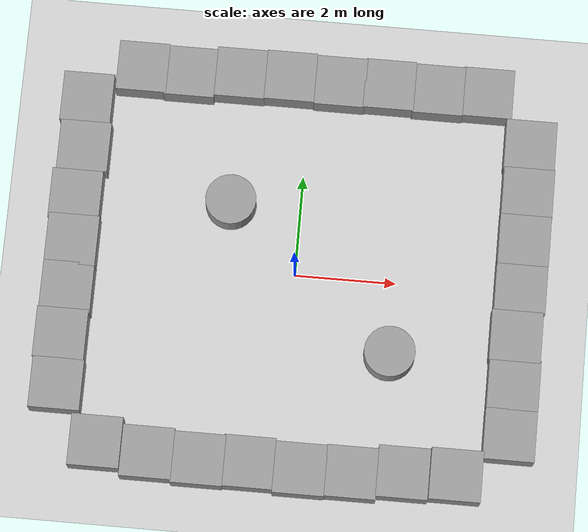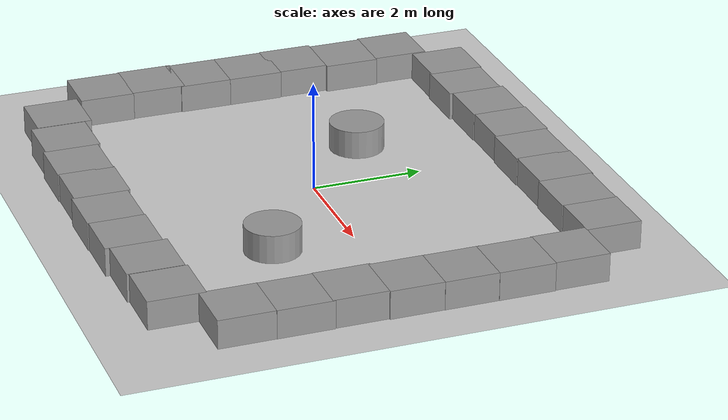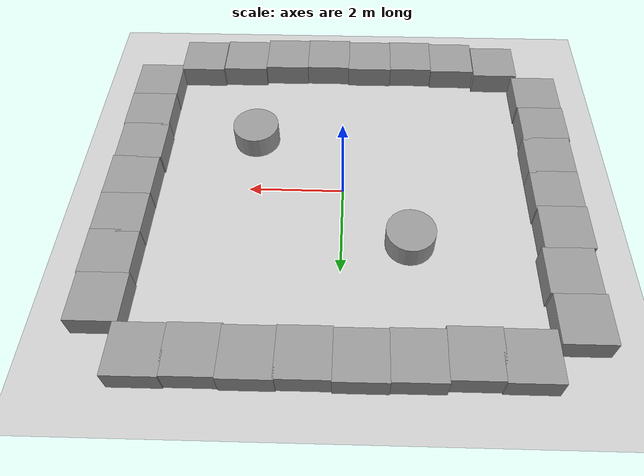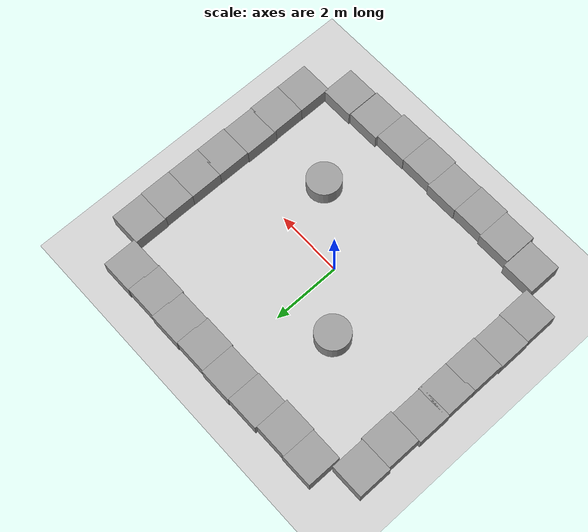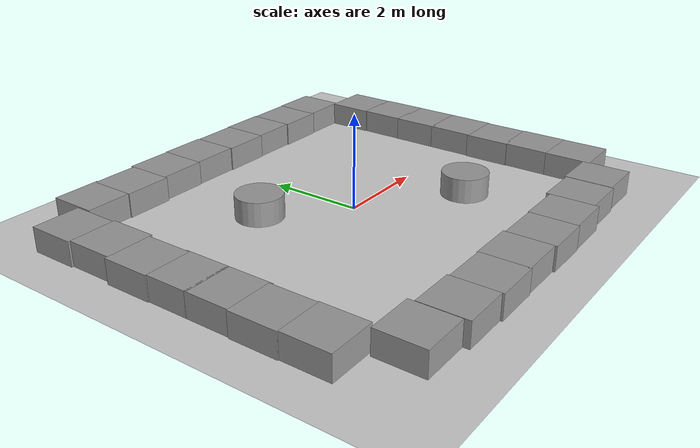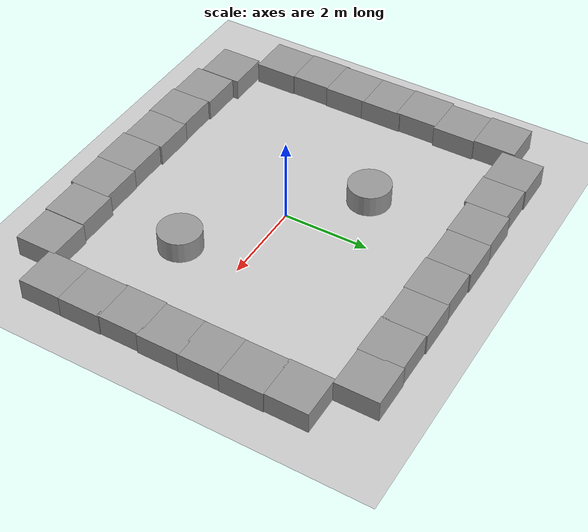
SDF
<sdf version="1.6">
 <world name="default">
  <light name="sun" type="directional">
   <pose>0 0 10 0 -0 0</pose>
   <diffuse>0.8 0.8 0.8 1</diffuse>
   <specular>0.2 0.2 0.2 1</specular>
   <attenuation>
    <range>1000</range>
    <constant>0.9</constant>
    <linear>0.01</linear>
    <quadratic>0.001</quadratic>
   </attenuation>
   <direction>-0.5 0.1 -0.9</direction>
  </light>
  <model name="ground_plane">
   <static>1</static>
   <link name="link">
    <collision name="collision">
     <geometry><plane><normal>0 0 1</normal><size>100 100</size></plane></geometry>
     <surface>
      <contact><collide_bitmask>65535</collide_bitmask></contact>
      <friction><ode><mu>100</mu><mu2>50</mu2></ode></friction>
     </surface>
    </collision>
    <visual name="visual">
     <cast_shadows>0</cast_shadows>
     <geometry><plane><normal>0 0 1</normal><size>100 100</size></plane></geometry>
     <material>
      <script><uri>file://media/materials/scripts/gazebo.material</uri><name>Gazebo/Grey</name></script>
     </material>
    </visual>
   </link>
  </model>
  <gravity>0 0 -9.8</gravity>
  <magnetic_field>6e-06 2.3e-05 -4.2e-05</magnetic_field>
  <atmosphere type="adiabatic"/>
  <physics name="default_physics" default="0" type="ode">
   <max_step_size>0.001</max_step_size>
   <real_time_factor>1</real_time_factor>
   <real_time_update_rate>1000</real_time_update_rate>
  </physics>
  <scene><ambient>0.4 0.4 0.4 1</ambient><background>0.7 0.7 0.7 1</background><shadows>1</shadows></scene>
  <audio><device>default</device></audio>
  <spherical_coordinates>
   <surface_model>EARTH_WGS84</surface_model>
   <latitude_deg>0</latitude_deg>
   <longitude_deg>0</longitude_deg>
   <elevation>0</elevation>
   <heading_deg>0</heading_deg>
  </spherical_coordinates>
  <model name="firstWorld">
   <model name="firstWorld">
    <link name="link_0">
     <inertial>
      <mass>1</mass>
      <inertia>
       <ixx>0.166667</ixx>
       <ixy>0</ixy>
       <ixz>0</ixz>
       <iyy>0.166667</iyy>
       <iyz>0</iyz>
       <izz>0.166667</izz>
      </inertia>
     </inertial>
     <pose>-3.38378 3.78969 0 0 -0 0</pose>
     <visual name="visual">
      <geometry><box><size>1 1 1</size></box></geometry>
      <material>
       <lighting>1</lighting>
       <script><uri>file://media/materials/scripts/gazebo.material</uri><name>Gazebo/Grey</name></script>
      </material>
     </visual>
     <collision name="collision">
      <geometry><box><size>1 1 1</size></box></geometry>
      <surface>
       <friction>
        <ode><mu>1</mu><mu2>1</mu2><fdir1>0 0 0</fdir1><slip1>0</slip1><slip2>0</slip2></ode>
        <torsional>
         <coefficient>1</coefficient>
         <patch_radius>0</patch_radius>
         <surface_radius>0</surface_radius>
         <use_patch_radius>1</use_patch_radius>
         <ode><slip>0</slip></ode>
        </torsional>
       </friction>
       <bounce><restitution_coefficient>0</restitution_coefficient><threshold>1e+06</threshold></bounce>
       <contact>
        <collide_without_contact>0</collide_without_contact>
        <collide_without_contact_bitmask>1</collide_without_contact_bitmask>
        <collide_bitmask>1</collide_bitmask>
        <ode>
         <soft_cfm>0</soft_cfm>
         <soft_erp>0.2</soft_erp>
         <kp>1e+13</kp>
         <kd>1</kd>
         <max_vel>0.01</max_vel>
         <min_depth>0</min_depth>
        </ode>
        <bullet>
         <split_impulse>1</split_impulse>
         <split_impulse_penetration_threshold>-0.01</split_impulse_penetration_threshold>
         <soft_cfm>0</soft_cfm>
         <soft_erp>0.2</soft_erp>
         <kp>1e+13</kp>
         <kd>1</kd>
        </bullet>
       </contact>
      </surface>
     </collision>
    </link>
    <link name="link_1">
     <inertial>
      <mass>1</mass>
      <inertia>
       <ixx>0.166667</ixx>
       <ixy>0</ixy>
       <ixz>0</ixz>
       <iyy>0.166667</iyy>
       <iyz>0</iyz>
       <izz>0.166667</izz>
      </inertia>
     </inertial>
     <pose>-2.43091 3.76654 0 0 -0 0</pose>
     <visual name="visual">
      <geometry><box><size>1 1 1</size></box></geometry>
      <material>
       <lighting>1</lighting>
       <script><uri>file://media/materials/scripts/gazebo.material</uri><name>Gazebo/Grey</name></script>
      </material>
     </visual>
     <collision name="collision">
      <geometry><box><size>1 1 1</size></box></geometry>
      <surface>
       <friction>
        <ode><mu>1</mu><mu2>1</mu2><fdir1>0 0 0</fdir1><slip1>0</slip1><slip2>0</slip2></ode>
        <torsional>
         <coefficient>1</coefficient>
         <patch_radius>0</patch_radius>
         <surface_radius>0</surface_radius>
         <use_patch_radius>1</use_patch_radius>
         <ode><slip>0</slip></ode>
        </torsional>
       </friction>
       <bounce><restitution_coefficient>0</restitution_coefficient><threshold>1e+06</threshold></bounce>
       <contact>
        <collide_without_contact>0</collide_without_contact>
        <collide_without_contact_bitmask>1</collide_without_contact_bitmask>
        <collide_bitmask>1</collide_bitmask>
        <ode>
         <soft_cfm>0</soft_cfm>
         <soft_erp>0.2</soft_erp>
         <kp>1e+13</kp>
         <kd>1</kd>
         <max_vel>0.01</max_vel>
         <min_depth>0</min_depth>
        </ode>
        <bullet>
         <split_impulse>1</split_impulse>
         <split_impulse_penetration_threshold>-0.01</split_impulse_penetration_threshold>
         <soft_cfm>0</soft_cfm>
         <soft_erp>0.2</soft_erp>
         <kp>1e+13</kp>
         <kd>1</kd>
        </bullet>
       </contact>
      </surface>
     </collision>
    </link>
    <link name="link_2">
     <inertial>
      <mass>1</mass>
      <inertia>
       <ixx>0.166667</ixx>
       <ixy>0</ixy>
       <ixz>0</ixz>
       <iyy>0.166667</iyy>
       <iyz>0</iyz>
       <izz>0.166667</izz>
      </inertia>
     </inertial>
     <pose>-1.4364 3.82612 0 0 -0 0</pose>
     <visual name="visual">
      <geometry><box><size>1 1 1</size></box></geometry>
      <material>
       <lighting>1</lighting>
       <script><uri>file://media/materials/scripts/gazebo.material</uri><name>Gazebo/Grey</name></script>
      </material>
     </visual>
     <collision name="collision">
      <geometry><box><size>1 1 1</size></box></geometry>
      <surface>
       <friction>
        <ode><mu>1</mu><mu2>1</mu2><fdir1>0 0 0</fdir1><slip1>0</slip1><slip2>0</slip2></ode>
        <torsional>
         <coefficient>1</coefficient>
         <patch_radius>0</patch_radius>
         <surface_radius>0</surface_radius>
         <use_patch_radius>1</use_patch_radius>
         <ode><slip>0</slip></ode>
        </torsional>
       </friction>
       <bounce><restitution_coefficient>0</restitution_coefficient><threshold>1e+06</threshold></bounce>
       <contact>
        <collide_without_contact>0</collide_without_contact>
        <collide_without_contact_bitmask>1</collide_without_contact_bitmask>
        <collide_bitmask>1</collide_bitmask>
        <ode>
         <soft_cfm>0</soft_cfm>
         <soft_erp>0.2</soft_erp>
         <kp>1e+13</kp>
         <kd>1</kd>
         <max_vel>0.01</max_vel>
         <min_depth>0</min_depth>
        </ode>
        <bullet>
         <split_impulse>1</split_impulse>
         <split_impulse_penetration_threshold>-0.01</split_impulse_penetration_threshold>
         <soft_cfm>0</soft_cfm>
         <soft_erp>0.2</soft_erp>
         <kp>1e+13</kp>
         <kd>1</kd>
        </bullet>
       </contact>
      </surface>
     </collision>
    </link>
    <link name="link_3">
     <inertial>
      <mass>1</mass>
      <inertia>
       <ixx>0.166667</ixx>
       <ixy>0</ixy>
       <ixz>0</ixz>
       <iyy>0.166667</iyy>
       <iyz>0</iyz>
       <izz>0.166667</izz>
      </inertia>
     </inertial>
     <pose>-0.442031 3.84443 0 0 -0 0</pose>
     <visual name="visual">
      <geometry><box><size>1 1 1</size></box></geometry>
      <material>
       <lighting>1</lighting>
       <script><uri>file://media/materials/scripts/gazebo.material</uri><name>Gazebo/Grey</name></script>
      </material>
     </visual>
     <collision name="collision">
      <geometry><box><size>1 1 1</size></box></geometry>
      <surface>
       <friction>
        <ode><mu>1</mu><mu2>1</mu2><fdir1>0 0 0</fdir1><slip1>0</slip1><slip2>0</slip2></ode>
        <torsional>
         <coefficient>1</coefficient>
         <patch_radius>0</patch_radius>
         <surface_radius>0</surface_radius>
         <use_patch_radius>1</use_patch_radius>
         <ode><slip>0</slip></ode>
        </torsional>
       </friction>
       <bounce><restitution_coefficient>0</restitution_coefficient><threshold>1e+06</threshold></bounce>
       <contact>
        <collide_without_contact>0</collide_without_contact>
        <collide_without_contact_bitmask>1</collide_without_contact_bitmask>
        <collide_bitmask>1</collide_bitmask>
        <ode>
         <soft_cfm>0</soft_cfm>
         <soft_erp>0.2</soft_erp>
         <kp>1e+13</kp>
         <kd>1</kd>
         <max_vel>0.01</max_vel>
         <min_depth>0</min_depth>
        </ode>
        <bullet>
         <split_impulse>1</split_impulse>
         <split_impulse_penetration_threshold>-0.01</split_impulse_penetration_threshold>
         <soft_cfm>0</soft_cfm>
         <soft_erp>0.2</soft_erp>
         <kp>1e+13</kp>
         <kd>1</kd>
        </bullet>
       </contact>
      </surface>
     </collision>
    </link>
    <link name="link_4">
     <inertial>
      <mass>1</mass>
      <inertia>
       <ixx>0.166667</ixx>
       <ixy>0</ixy>
       <ixz>0</ixz>
       <iyy>0.166667</iyy>
       <iyz>0</iyz>
       <izz>0.166667</izz>
      </inertia>
     </inertial>
     <pose>0.552301 3.82099 0 0 -0 0</pose>
     <visual name="visual">
      <geometry><box><size>1 1 1</size></box></geometry>
      <material>
       <lighting>1</lighting>
       <script><uri>file://media/materials/scripts/gazebo.material</uri><name>Gazebo/Grey</name></script>
      </material>
     </visual>
     <collision name="collision">
      <geometry><box><size>1 1 1</size></box></geometry>
      <surface>
       <friction>
        <ode><mu>1</mu><mu2>1</mu2><fdir1>0 0 0</fdir1><slip1>0</slip1><slip2>0</slip2></ode>
        <torsional>
         <coefficient>1</coefficient>
         <patch_radius>0</patch_radius>
         <surface_radius>0</surface_radius>
         <use_patch_radius>1</use_patch_radius>
         <ode><slip>0</slip></ode>
        </torsional>
       </friction>
       <bounce><restitution_coefficient>0</restitution_coefficient><threshold>1e+06</threshold></bounce>
       <contact>
        <collide_without_contact>0</collide_without_contact>
        <collide_without_contact_bitmask>1</collide_without_contact_bitmask>
        <collide_bitmask>1</collide_bitmask>
        <ode>
         <soft_cfm>0</soft_cfm>
         <soft_erp>0.2</soft_erp>
         <kp>1e+13</kp>
         <kd>1</kd>
         <max_vel>0.01</max_vel>
         <min_depth>0</min_depth>
        </ode>
        <bullet>
         <split_impulse>1</split_impulse>
         <split_impulse_penetration_threshold>-0.01</split_impulse_penetration_threshold>
         <soft_cfm>0</soft_cfm>
         <soft_erp>0.2</soft_erp>
         <kp>1e+13</kp>
         <kd>1</kd>
        </bullet>
       </contact>
      </surface>
     </collision>
    </link>
    <link name="link_5">
     <inertial>
      <mass>1</mass>
      <inertia>
       <ixx>0.166667</ixx>
       <ixy>0</ixy>
       <ixz>0</ixz>
       <iyy>0.166667</iyy>
       <iyz>0</iyz>
       <izz>0.166667</izz>
      </inertia>
     </inertial>
     <pose>1.52603 3.83937 0 0 -0 0</pose>
     <visual name="visual">
      <geometry><box><size>1 1 1</size></box></geometry>
      <material>
       <lighting>1</lighting>
       <script><uri>file://media/materials/scripts/gazebo.material</uri><name>Gazebo/Grey</name></script>
      </material>
     </visual>
     <collision name="collision">
      <geometry><box><size>1 1 1</size></box></geometry>
      <surface>
       <friction>
        <ode><mu>1</mu><mu2>1</mu2><fdir1>0 0 0</fdir1><slip1>0</slip1><slip2>0</slip2></ode>
        <torsional>
         <coefficient>1</coefficient>
         <patch_radius>0</patch_radius>
         <surface_radius>0</surface_radius>
         <use_patch_radius>1</use_patch_radius>
         <ode><slip>0</slip></ode>
        </torsional>
       </friction>
       <bounce><restitution_coefficient>0</restitution_coefficient><threshold>1e+06</threshold></bounce>
       <contact>
        <collide_without_contact>0</collide_without_contact>
        <collide_without_contact_bitmask>1</collide_without_contact_bitmask>
        <collide_bitmask>1</collide_bitmask>
        <ode>
         <soft_cfm>0</soft_cfm>
         <soft_erp>0.2</soft_erp>
         <kp>1e+13</kp>
         <kd>1</kd>
         <max_vel>0.01</max_vel>
         <min_depth>0</min_depth>
        </ode>
        <bullet>
         <split_impulse>1</split_impulse>
         <split_impulse_penetration_threshold>-0.01</split_impulse_penetration_threshold>
         <soft_cfm>0</soft_cfm>
         <soft_erp>0.2</soft_erp>
         <kp>1e+13</kp>
         <kd>1</kd>
        </bullet>
       </contact>
      </surface>
     </collision>
    </link>
    <link name="link_5_clone">
     <inertial>
      <mass>1</mass>
      <inertia>
       <ixx>0.166667</ixx>
       <ixy>0</ixy>
       <ixz>0</ixz>
       <iyy>0.166667</iyy>
       <iyz>0</iyz>
       <izz>0.166667</izz>
      </inertia>
     </inertial>
     <pose>2.49957 3.81599 0 0 -0 0</pose>
     <visual name="visual">
      <geometry><box><size>1 1 1</size></box></geometry>
      <material>
       <lighting>1</lighting>
       <script><uri>file://media/materials/scripts/gazebo.material</uri><name>Gazebo/Grey</name></script>
       <shader type="pixel"/>
      </material>
     </visual>
     <collision name="collision">
      <geometry><box><size>1 1 1</size></box></geometry>
      <surface>
       <friction>
        <ode><mu>1</mu><mu2>1</mu2><fdir1>0 0 0</fdir1><slip1>0</slip1><slip2>0</slip2></ode>
        <torsional>
         <coefficient>1</coefficient>
         <patch_radius>0</patch_radius>
         <surface_radius>0</surface_radius>
         <use_patch_radius>1</use_patch_radius>
         <ode><slip>0</slip></ode>
        </torsional>
       </friction>
       <bounce><restitution_coefficient>0</restitution_coefficient><threshold>1e+06</threshold></bounce>
       <contact>
        <collide_without_contact>0</collide_without_contact>
        <collide_without_contact_bitmask>1</collide_without_contact_bitmask>
        <collide_bitmask>1</collide_bitmask>
        <ode>
         <soft_cfm>0</soft_cfm>
         <soft_erp>0.2</soft_erp>
         <kp>1e+13</kp>
         <kd>1</kd>
         <max_vel>0.01</max_vel>
         <min_depth>0</min_depth>
        </ode>
        <bullet>
         <split_impulse>1</split_impulse>
         <split_impulse_penetration_threshold>-0.01</split_impulse_penetration_threshold>
         <soft_cfm>0</soft_cfm>
         <soft_erp>0.2</soft_erp>
         <kp>1e+13</kp>
         <kd>1</kd>
        </bullet>
       </contact>
      </surface>
     </collision>
    </link>
    <link name="link_5_clone_0">
     <inertial>
      <mass>1</mass>
      <inertia>
       <ixx>0.166667</ixx>
       <ixy>0</ixy>
       <ixz>0</ixz>
       <iyy>0.166667</iyy>
       <iyz>0</iyz>
       <izz>0.166667</izz>
      </inertia>
     </inertial>
     <pose>3.47337 3.83436 0 0 -0 0</pose>
     <visual name="visual">
      <geometry><box><size>1 1 1</size></box></geometry>
      <material>
       <lighting>1</lighting>
       <script><uri>file://media/materials/scripts/gazebo.material</uri><name>Gazebo/Grey</name></script>
       <shader type="pixel"/>
      </material>
     </visual>
     <collision name="collision">
      <geometry><box><size>1 1 1</size></box></geometry>
      <surface>
       <friction>
        <ode><mu>1</mu><mu2>1</mu2><fdir1>0 0 0</fdir1><slip1>0</slip1><slip2>0</slip2></ode>
        <torsional>
         <coefficient>1</coefficient>
         <patch_radius>0</patch_radius>
         <surface_radius>0</surface_radius>
         <use_patch_radius>1</use_patch_radius>
         <ode><slip>0</slip></ode>
        </torsional>
       </friction>
       <bounce><restitution_coefficient>0</restitution_coefficient><threshold>1e+06</threshold></bounce>
       <contact>
        <collide_without_contact>0</collide_without_contact>
        <collide_without_contact_bitmask>1</collide_without_contact_bitmask>
        <collide_bitmask>1</collide_bitmask>
        <ode>
         <soft_cfm>0</soft_cfm>
         <soft_erp>0.2</soft_erp>
         <kp>1e+13</kp>
         <kd>1</kd>
         <max_vel>0.01</max_vel>
         <min_depth>0</min_depth>
        </ode>
        <bullet>
         <split_impulse>1</split_impulse>
         <split_impulse_penetration_threshold>-0.01</split_impulse_penetration_threshold>
         <soft_cfm>0</soft_cfm>
         <soft_erp>0.2</soft_erp>
         <kp>1e+13</kp>
         <kd>1</kd>
        </bullet>
       </contact>
      </surface>
     </collision>
    </link>
    <link name="link_5_clone_1">
     <inertial>
      <mass>1</mass>
      <inertia>
       <ixx>0.166667</ixx>
       <ixy>0</ixy>
       <ixz>0</ixz>
       <iyy>0.166667</iyy>
       <iyz>0</iyz>
       <izz>0.166667</izz>
      </inertia>
     </inertial>
     <pose>4.38053 2.83613 0 0 -0 0</pose>
     <visual name="visual">
      <geometry><box><size>1 1 1</size></box></geometry>
      <material>
       <lighting>1</lighting>
       <script><uri>file://media/materials/scripts/gazebo.material</uri><name>Gazebo/Grey</name></script>
       <shader type="pixel"/>
      </material>
     </visual>
     <collision name="collision">
      <geometry><box><size>1 1 1</size></box></geometry>
      <surface>
       <friction>
        <ode><mu>1</mu><mu2>1</mu2><fdir1>0 0 0</fdir1><slip1>0</slip1><slip2>0</slip2></ode>
        <torsional>
         <coefficient>1</coefficient>
         <patch_radius>0</patch_radius>
         <surface_radius>0</surface_radius>
         <use_patch_radius>1</use_patch_radius>
         <ode><slip>0</slip></ode>
        </torsional>
       </friction>
       <bounce><restitution_coefficient>0</restitution_coefficient><threshold>1e+06</threshold></bounce>
       <contact>
        <collide_without_contact>0</collide_without_contact>
        <collide_without_contact_bitmask>1</collide_without_contact_bitmask>
        <collide_bitmask>1</collide_bitmask>
        <ode>
         <soft_cfm>0</soft_cfm>
         <soft_erp>0.2</soft_erp>
         <kp>1e+13</kp>
         <kd>1</kd>
         <max_vel>0.01</max_vel>
         <min_depth>0</min_depth>
        </ode>
        <bullet>
         <split_impulse>1</split_impulse>
         <split_impulse_penetration_threshold>-0.01</split_impulse_penetration_threshold>
         <soft_cfm>0</soft_cfm>
         <soft_erp>0.2</soft_erp>
         <kp>1e+13</kp>
         <kd>1</kd>
        </bullet>
       </contact>
      </surface>
     </collision>
    </link>
    <link name="link_5_clone_10">
     <inertial>
      <mass>1</mass>
      <inertia>
       <ixx>0.166667</ixx>
       <ixy>0</ixy>
       <ixz>0</ixz>
       <iyy>0.166667</iyy>
       <iyz>0</iyz>
       <izz>0.166667</izz>
      </inertia>
     </inertial>
     <pose>1.39892 -3.93691 0 0 -0 0</pose>
     <visual name="visual">
      <geometry><box><size>1 1 1</size></box></geometry>
      <material>
       <lighting>1</lighting>
       <script><uri>file://media/materials/scripts/gazebo.material</uri><name>Gazebo/Grey</name></script>
       <shader type="pixel"/>
      </material>
     </visual>
     <collision name="collision">
      <geometry><box><size>1 1 1</size></box></geometry>
      <surface>
       <friction>
        <ode><mu>1</mu><mu2>1</mu2><fdir1>0 0 0</fdir1><slip1>0</slip1><slip2>0</slip2></ode>
        <torsional>
         <coefficient>1</coefficient>
         <patch_radius>0</patch_radius>
         <surface_radius>0</surface_radius>
         <use_patch_radius>1</use_patch_radius>
         <ode><slip>0</slip></ode>
        </torsional>
       </friction>
       <bounce><restitution_coefficient>0</restitution_coefficient><threshold>1e+06</threshold></bounce>
       <contact>
        <collide_without_contact>0</collide_without_contact>
        <collide_without_contact_bitmask>1</collide_without_contact_bitmask>
        <collide_bitmask>1</collide_bitmask>
        <ode>
         <soft_cfm>0</soft_cfm>
         <soft_erp>0.2</soft_erp>
         <kp>1e+13</kp>
         <kd>1</kd>
         <max_vel>0.01</max_vel>
         <min_depth>0</min_depth>
        </ode>
        <bullet>
         <split_impulse>1</split_impulse>
         <split_impulse_penetration_threshold>-0.01</split_impulse_penetration_threshold>
         <soft_cfm>0</soft_cfm>
         <soft_erp>0.2</soft_erp>
         <kp>1e+13</kp>
         <kd>1</kd>
        </bullet>
       </contact>
      </surface>
     </collision>
    </link>
    <link name="link_5_clone_11">
     <inertial>
      <mass>1</mass>
      <inertia>
       <ixx>0.166667</ixx>
       <ixy>0</ixy>
       <ixz>0</ixz>
       <iyy>0.166667</iyy>
       <iyz>0</iyz>
       <izz>0.166667</izz>
      </inertia>
     </inertial>
     <pose>0.408098 -3.95501 0 0 -0 0</pose>
     <visual name="visual">
      <geometry><box><size>1 1 1</size></box></geometry>
      <material>
       <lighting>1</lighting>
       <script><uri>file://media/materials/scripts/gazebo.material</uri><name>Gazebo/Grey</name></script>
       <shader type="pixel"/>
      </material>
     </visual>
     <collision name="collision">
      <geometry><box><size>1 1 1</size></box></geometry>
      <surface>
       <friction>
        <ode><mu>1</mu><mu2>1</mu2><fdir1>0 0 0</fdir1><slip1>0</slip1><slip2>0</slip2></ode>
        <torsional>
         <coefficient>1</coefficient>
         <patch_radius>0</patch_radius>
         <surface_radius>0</surface_radius>
         <use_patch_radius>1</use_patch_radius>
         <ode><slip>0</slip></ode>
        </torsional>
       </friction>
       <bounce><restitution_coefficient>0</restitution_coefficient><threshold>1e+06</threshold></bounce>
       <contact>
        <collide_without_contact>0</collide_without_contact>
        <collide_without_contact_bitmask>1</collide_without_contact_bitmask>
        <collide_bitmask>1</collide_bitmask>
        <ode>
         <soft_cfm>0</soft_cfm>
         <soft_erp>0.2</soft_erp>
         <kp>1e+13</kp>
         <kd>1</kd>
         <max_vel>0.01</max_vel>
         <min_depth>0</min_depth>
        </ode>
        <bullet>
         <split_impulse>1</split_impulse>
         <split_impulse_penetration_threshold>-0.01</split_impulse_penetration_threshold>
         <soft_cfm>0</soft_cfm>
         <soft_erp>0.2</soft_erp>
         <kp>1e+13</kp>
         <kd>1</kd>
        </bullet>
       </contact>
      </surface>
     </collision>
    </link>
    <link name="link_5_clone_12">
     <inertial>
      <mass>1</mass>
      <inertia>
       <ixx>0.166667</ixx>
       <ixy>0</ixy>
       <ixz>0</ixz>
       <iyy>0.166667</iyy>
       <iyz>0</iyz>
       <izz>0.166667</izz>
      </inertia>
     </inertial>
     <pose>-0.582586 -3.91124 0 0 -0 0</pose>
     <visual name="visual">
      <geometry><box><size>1 1 1</size></box></geometry>
      <material>
       <lighting>1</lighting>
       <script><uri>file://media/materials/scripts/gazebo.material</uri><name>Gazebo/Grey</name></script>
       <shader type="pixel"/>
      </material>
     </visual>
     <collision name="collision">
      <geometry><box><size>1 1 1</size></box></geometry>
      <surface>
       <friction>
        <ode><mu>1</mu><mu2>1</mu2><fdir1>0 0 0</fdir1><slip1>0</slip1><slip2>0</slip2></ode>
        <torsional>
         <coefficient>1</coefficient>
         <patch_radius>0</patch_radius>
         <surface_radius>0</surface_radius>
         <use_patch_radius>1</use_patch_radius>
         <ode><slip>0</slip></ode>
        </torsional>
       </friction>
       <bounce><restitution_coefficient>0</restitution_coefficient><threshold>1e+06</threshold></bounce>
       <contact>
        <collide_without_contact>0</collide_without_contact>
        <collide_without_contact_bitmask>1</collide_without_contact_bitmask>
        <collide_bitmask>1</collide_bitmask>
        <ode>
         <soft_cfm>0</soft_cfm>
         <soft_erp>0.2</soft_erp>
         <kp>1e+13</kp>
         <kd>1</kd>
         <max_vel>0.01</max_vel>
         <min_depth>0</min_depth>
        </ode>
        <bullet>
         <split_impulse>1</split_impulse>
         <split_impulse_penetration_threshold>-0.01</split_impulse_penetration_threshold>
         <soft_cfm>0</soft_cfm>
         <soft_erp>0.2</soft_erp>
         <kp>1e+13</kp>
         <kd>1</kd>
        </bullet>
       </contact>
      </surface>
     </collision>
    </link>
    <link name="link_5_clone_13">
     <inertial>
      <mass>1</mass>
      <inertia>
       <ixx>0.166667</ixx>
       <ixy>0</ixy>
       <ixz>0</ixz>
       <iyy>0.166667</iyy>
       <iyz>0</iyz>
       <izz>0.166667</izz>
      </inertia>
     </inertial>
     <pose>-1.55275 -3.92933 0 0 -0 0</pose>
     <visual name="visual">
      <geometry><box><size>1 1 1</size></box></geometry>
      <material>
       <lighting>1</lighting>
       <script><uri>file://media/materials/scripts/gazebo.material</uri><name>Gazebo/Grey</name></script>
       <shader type="pixel"/>
      </material>
     </visual>
     <collision name="collision">
      <geometry><box><size>1 1 1</size></box></geometry>
      <surface>
       <friction>
        <ode><mu>1</mu><mu2>1</mu2><fdir1>0 0 0</fdir1><slip1>0</slip1><slip2>0</slip2></ode>
        <torsional>
         <coefficient>1</coefficient>
         <patch_radius>0</patch_radius>
         <surface_radius>0</surface_radius>
         <use_patch_radius>1</use_patch_radius>
         <ode><slip>0</slip></ode>
        </torsional>
       </friction>
       <bounce><restitution_coefficient>0</restitution_coefficient><threshold>1e+06</threshold></bounce>
       <contact>
        <collide_without_contact>0</collide_without_contact>
        <collide_without_contact_bitmask>1</collide_without_contact_bitmask>
        <collide_bitmask>1</collide_bitmask>
        <ode>
         <soft_cfm>0</soft_cfm>
         <soft_erp>0.2</soft_erp>
         <kp>1e+13</kp>
         <kd>1</kd>
         <max_vel>0.01</max_vel>
         <min_depth>0</min_depth>
        </ode>
        <bullet>
         <split_impulse>1</split_impulse>
         <split_impulse_penetration_threshold>-0.01</split_impulse_penetration_threshold>
         <soft_cfm>0</soft_cfm>
         <soft_erp>0.2</soft_erp>
         <kp>1e+13</kp>
         <kd>1</kd>
        </bullet>
       </contact>
      </surface>
     </collision>
    </link>
    <link name="link_5_clone_14">
     <inertial>
      <mass>1</mass>
      <inertia>
       <ixx>0.166667</ixx>
       <ixy>0</ixy>
       <ixz>0</ixz>
       <iyy>0.166667</iyy>
       <iyz>0</iyz>
       <izz>0.166667</izz>
      </inertia>
     </inertial>
     <pose>-2.54359 -3.88568 0 0 -0 0</pose>
     <visual name="visual">
      <geometry><box><size>1 1 1</size></box></geometry>
      <material>
       <lighting>1</lighting>
       <script><uri>file://media/materials/scripts/gazebo.material</uri><name>Gazebo/Grey</name></script>
       <shader type="pixel"/>
      </material>
     </visual>
     <collision name="collision">
      <geometry><box><size>1 1 1</size></box></geometry>
      <surface>
       <friction>
        <ode><mu>1</mu><mu2>1</mu2><fdir1>0 0 0</fdir1><slip1>0</slip1><slip2>0</slip2></ode>
        <torsional>
         <coefficient>1</coefficient>
         <patch_radius>0</patch_radius>
         <surface_radius>0</surface_radius>
         <use_patch_radius>1</use_patch_radius>
         <ode><slip>0</slip></ode>
        </torsional>
       </friction>
       <bounce><restitution_coefficient>0</restitution_coefficient><threshold>1e+06</threshold></bounce>
       <contact>
        <collide_without_contact>0</collide_without_contact>
        <collide_without_contact_bitmask>1</collide_without_contact_bitmask>
        <collide_bitmask>1</collide_bitmask>
        <ode>
         <soft_cfm>0</soft_cfm>
         <soft_erp>0.2</soft_erp>
         <kp>1e+13</kp>
         <kd>1</kd>
         <max_vel>0.01</max_vel>
         <min_depth>0</min_depth>
        </ode>
        <bullet>
         <split_impulse>1</split_impulse>
         <split_impulse_penetration_threshold>-0.01</split_impulse_penetration_threshold>
         <soft_cfm>0</soft_cfm>
         <soft_erp>0.2</soft_erp>
         <kp>1e+13</kp>
         <kd>1</kd>
        </bullet>
       </contact>
      </surface>
     </collision>
    </link>
    <link name="link_5_clone_15">
     <inertial>
      <mass>1</mass>
      <inertia>
       <ixx>0.166667</ixx>
       <ixy>0</ixy>
       <ixz>0</ixz>
       <iyy>0.166667</iyy>
       <iyz>0</iyz>
       <izz>0.166667</izz>
      </inertia>
     </inertial>
     <pose>-4.41985 3.06618 0 0 -0 0</pose>
     <visual name="visual">
      <geometry><box><size>1 1 1</size></box></geometry>
      <material>
       <lighting>1</lighting>
       <script><uri>file://media/materials/scripts/gazebo.material</uri><name>Gazebo/Grey</name></script>
       <shader type="pixel"/>
      </material>
     </visual>
     <collision name="collision">
      <geometry><box><size>1 1 1</size></box></geometry>
      <surface>
       <friction>
        <ode><mu>1</mu><mu2>1</mu2><fdir1>0 0 0</fdir1><slip1>0</slip1><slip2>0</slip2></ode>
        <torsional>
         <coefficient>1</coefficient>
         <patch_radius>0</patch_radius>
         <surface_radius>0</surface_radius>
         <use_patch_radius>1</use_patch_radius>
         <ode><slip>0</slip></ode>
        </torsional>
       </friction>
       <bounce><restitution_coefficient>0</restitution_coefficient><threshold>1e+06</threshold></bounce>
       <contact>
        <collide_without_contact>0</collide_without_contact>
        <collide_without_contact_bitmask>1</collide_without_contact_bitmask>
        <collide_bitmask>1</collide_bitmask>
        <ode>
         <soft_cfm>0</soft_cfm>
         <soft_erp>0.2</soft_erp>
         <kp>1e+13</kp>
         <kd>1</kd>
         <max_vel>0.01</max_vel>
         <min_depth>0</min_depth>
        </ode>
        <bullet>
         <split_impulse>1</split_impulse>
         <split_impulse_penetration_threshold>-0.01</split_impulse_penetration_threshold>
         <soft_cfm>0</soft_cfm>
         <soft_erp>0.2</soft_erp>
         <kp>1e+13</kp>
         <kd>1</kd>
        </bullet>
       </contact>
      </surface>
     </collision>
    </link>
    <link name="link_5_clone_16">
     <inertial>
      <mass>1</mass>
      <inertia>
       <ixx>0.166667</ixx>
       <ixy>0</ixy>
       <ixz>0</ixz>
       <iyy>0.166667</iyy>
       <iyz>0</iyz>
       <izz>0.166667</izz>
      </inertia>
     </inertial>
     <pose>-4.37877 2.0709 0 0 -0 0</pose>
     <visual name="visual">
      <geometry><box><size>1 1 1</size></box></geometry>
      <material>
       <lighting>1</lighting>
       <script><uri>file://media/materials/scripts/gazebo.material</uri><name>Gazebo/Grey</name></script>
       <shader type="pixel"/>
      </material>
     </visual>
     <collision name="collision">
      <geometry><box><size>1 1 1</size></box></geometry>
      <surface>
       <friction>
        <ode><mu>1</mu><mu2>1</mu2><fdir1>0 0 0</fdir1><slip1>0</slip1><slip2>0</slip2></ode>
        <torsional>
         <coefficient>1</coefficient>
         <patch_radius>0</patch_radius>
         <surface_radius>0</surface_radius>
         <use_patch_radius>1</use_patch_radius>
         <ode><slip>0</slip></ode>
        </torsional>
       </friction>
       <bounce><restitution_coefficient>0</restitution_coefficient><threshold>1e+06</threshold></bounce>
       <contact>
        <collide_without_contact>0</collide_without_contact>
        <collide_without_contact_bitmask>1</collide_without_contact_bitmask>
        <collide_bitmask>1</collide_bitmask>
        <ode>
         <soft_cfm>0</soft_cfm>
         <soft_erp>0.2</soft_erp>
         <kp>1e+13</kp>
         <kd>1</kd>
         <max_vel>0.01</max_vel>
         <min_depth>0</min_depth>
        </ode>
        <bullet>
         <split_impulse>1</split_impulse>
         <split_impulse_penetration_threshold>-0.01</split_impulse_penetration_threshold>
         <soft_cfm>0</soft_cfm>
         <soft_erp>0.2</soft_erp>
         <kp>1e+13</kp>
         <kd>1</kd>
        </bullet>
       </contact>
      </surface>
     </collision>
    </link>
    <link name="link_5_clone_17">
     <inertial>
      <mass>1</mass>
      <inertia>
       <ixx>0.166667</ixx>
       <ixy>0</ixy>
       <ixz>0</ixz>
       <iyy>0.166667</iyy>
       <iyz>0</iyz>
       <izz>0.166667</izz>
      </inertia>
     </inertial>
     <pose>-4.44119 1.07681 0 0 -0 0</pose>
     <visual name="visual">
      <geometry><box><size>1 1 1</size></box></geometry>
      <material>
       <lighting>1</lighting>
       <script><uri>file://media/materials/scripts/gazebo.material</uri><name>Gazebo/Grey</name></script>
       <shader type="pixel"/>
      </material>
     </visual>
     <collision name="collision">
      <geometry><box><size>1 1 1</size></box></geometry>
      <surface>
       <friction>
        <ode><mu>1</mu><mu2>1</mu2><fdir1>0 0 0</fdir1><slip1>0</slip1><slip2>0</slip2></ode>
        <torsional>
         <coefficient>1</coefficient>
         <patch_radius>0</patch_radius>
         <surface_radius>0</surface_radius>
         <use_patch_radius>1</use_patch_radius>
         <ode><slip>0</slip></ode>
        </torsional>
       </friction>
       <bounce><restitution_coefficient>0</restitution_coefficient><threshold>1e+06</threshold></bounce>
       <contact>
        <collide_without_contact>0</collide_without_contact>
        <collide_without_contact_bitmask>1</collide_without_contact_bitmask>
        <collide_bitmask>1</collide_bitmask>
        <ode>
         <soft_cfm>0</soft_cfm>
         <soft_erp>0.2</soft_erp>
         <kp>1e+13</kp>
         <kd>1</kd>
         <max_vel>0.01</max_vel>
         <min_depth>0</min_depth>
        </ode>
        <bullet>
         <split_impulse>1</split_impulse>
         <split_impulse_penetration_threshold>-0.01</split_impulse_penetration_threshold>
         <soft_cfm>0</soft_cfm>
         <soft_erp>0.2</soft_erp>
         <kp>1e+13</kp>
         <kd>1</kd>
        </bullet>
       </contact>
      </surface>
     </collision>
    </link>
    <link name="link_5_clone_18">
     <inertial>
      <mass>1</mass>
      <inertia>
       <ixx>0.166667</ixx>
       <ixy>0</ixy>
       <ixz>0</ixz>
       <iyy>0.166667</iyy>
       <iyz>0</iyz>
       <izz>0.166667</izz>
      </inertia>
     </inertial>
     <pose>-4.42071 0.166137 0 0 -0 0</pose>
     <visual name="visual">
      <geometry><box><size>1 1 1</size></box></geometry>
      <material>
       <lighting>1</lighting>
       <script><uri>file://media/materials/scripts/gazebo.material</uri><name>Gazebo/Grey</name></script>
       <shader type="pixel"/>
      </material>
     </visual>
     <collision name="collision">
      <geometry><box><size>1 1 1</size></box></geometry>
      <surface>
       <friction>
        <ode><mu>1</mu><mu2>1</mu2><fdir1>0 0 0</fdir1><slip1>0</slip1><slip2>0</slip2></ode>
        <torsional>
         <coefficient>1</coefficient>
         <patch_radius>0</patch_radius>
         <surface_radius>0</surface_radius>
         <use_patch_radius>1</use_patch_radius>
         <ode><slip>0</slip></ode>
        </torsional>
       </friction>
       <bounce><restitution_coefficient>0</restitution_coefficient><threshold>1e+06</threshold></bounce>
       <contact>
        <collide_without_contact>0</collide_without_contact>
        <collide_without_contact_bitmask>1</collide_without_contact_bitmask>
        <collide_bitmask>1</collide_bitmask>
        <ode>
         <soft_cfm>0</soft_cfm>
         <soft_erp>0.2</soft_erp>
         <kp>1e+13</kp>
         <kd>1</kd>
         <max_vel>0.01</max_vel>
         <min_depth>0</min_depth>
        </ode>
        <bullet>
         <split_impulse>1</split_impulse>
         <split_impulse_penetration_threshold>-0.01</split_impulse_penetration_threshold>
         <soft_cfm>0</soft_cfm>
         <soft_erp>0.2</soft_erp>
         <kp>1e+13</kp>
         <kd>1</kd>
        </bullet>
       </contact>
      </surface>
     </collision>
    </link>
    <link name="link_5_clone_19">
     <inertial>
      <mass>1</mass>
      <inertia>
       <ixx>0.166667</ixx>
       <ixy>0</ixy>
       <ixz>0</ixz>
       <iyy>0.166667</iyy>
       <iyz>0</iyz>
       <izz>0.166667</izz>
      </inertia>
     </inertial>
     <pose>-4.42093 -0.785014 0 0 -0 0</pose>
     <visual name="visual">
      <geometry><box><size>1 1 1</size></box></geometry>
      <material>
       <lighting>1</lighting>
       <script><uri>file://media/materials/scripts/gazebo.material</uri><name>Gazebo/Grey</name></script>
       <shader type="pixel"/>
      </material>
     </visual>
     <collision name="collision">
      <geometry><box><size>1 1 1</size></box></geometry>
      <surface>
       <friction>
        <ode><mu>1</mu><mu2>1</mu2><fdir1>0 0 0</fdir1><slip1>0</slip1><slip2>0</slip2></ode>
        <torsional>
         <coefficient>1</coefficient>
         <patch_radius>0</patch_radius>
         <surface_radius>0</surface_radius>
         <use_patch_radius>1</use_patch_radius>
         <ode><slip>0</slip></ode>
        </torsional>
       </friction>
       <bounce><restitution_coefficient>0</restitution_coefficient><threshold>1e+06</threshold></bounce>
       <contact>
        <collide_without_contact>0</collide_without_contact>
        <collide_without_contact_bitmask>1</collide_without_contact_bitmask>
        <collide_bitmask>1</collide_bitmask>
        <ode>
         <soft_cfm>0</soft_cfm>
         <soft_erp>0.2</soft_erp>
         <kp>1e+13</kp>
         <kd>1</kd>
         <max_vel>0.01</max_vel>
         <min_depth>0</min_depth>
        </ode>
        <bullet>
         <split_impulse>1</split_impulse>
         <split_impulse_penetration_threshold>-0.01</split_impulse_penetration_threshold>
         <soft_cfm>0</soft_cfm>
         <soft_erp>0.2</soft_erp>
         <kp>1e+13</kp>
         <kd>1</kd>
        </bullet>
       </contact>
      </surface>
     </collision>
    </link>
    <link name="link_5_clone_2">
     <inertial>
      <mass>1</mass>
      <inertia>
       <ixx>0.166667</ixx>
       <ixy>0</ixy>
       <ixz>0</ixz>
       <iyy>0.166667</iyy>
       <iyz>0</iyz>
       <izz>0.166667</izz>
      </inertia>
     </inertial>
     <pose>4.39693 1.86181 0 0 -0 0</pose>
     <visual name="visual">
      <geometry><box><size>1 1 1</size></box></geometry>
      <material>
       <lighting>1</lighting>
       <script><uri>file://media/materials/scripts/gazebo.material</uri><name>Gazebo/Grey</name></script>
       <shader type="pixel"/>
      </material>
     </visual>
     <collision name="collision">
      <geometry><box><size>1 1 1</size></box></geometry>
      <surface>
       <friction>
        <ode><mu>1</mu><mu2>1</mu2><fdir1>0 0 0</fdir1><slip1>0</slip1><slip2>0</slip2></ode>
        <torsional>
         <coefficient>1</coefficient>
         <patch_radius>0</patch_radius>
         <surface_radius>0</surface_radius>
         <use_patch_radius>1</use_patch_radius>
         <ode><slip>0</slip></ode>
        </torsional>
       </friction>
       <bounce><restitution_coefficient>0</restitution_coefficient><threshold>1e+06</threshold></bounce>
       <contact>
        <collide_without_contact>0</collide_without_contact>
        <collide_without_contact_bitmask>1</collide_without_contact_bitmask>
        <collide_bitmask>1</collide_bitmask>
        <ode>
         <soft_cfm>0</soft_cfm>
         <soft_erp>0.2</soft_erp>
         <kp>1e+13</kp>
         <kd>1</kd>
         <max_vel>0.01</max_vel>
         <min_depth>0</min_depth>
        </ode>
        <bullet>
         <split_impulse>1</split_impulse>
         <split_impulse_penetration_threshold>-0.01</split_impulse_penetration_threshold>
         <soft_cfm>0</soft_cfm>
         <soft_erp>0.2</soft_erp>
         <kp>1e+13</kp>
         <kd>1</kd>
        </bullet>
       </contact>
      </surface>
     </collision>
    </link>
    <link name="link_5_clone_20">
     <inertial>
      <mass>1</mass>
      <inertia>
       <ixx>0.166667</ixx>
       <ixy>0</ixy>
       <ixz>0</ixz>
       <iyy>0.166667</iyy>
       <iyz>0</iyz>
       <izz>0.166667</izz>
      </inertia>
     </inertial>
     <pose>-4.44194 -1.71463 0 0 -0 0</pose>
     <visual name="visual">
      <geometry><box><size>1 1 1</size></box></geometry>
      <material>
       <lighting>1</lighting>
       <script><uri>file://media/materials/scripts/gazebo.material</uri><name>Gazebo/Grey</name></script>
       <shader type="pixel"/>
      </material>
     </visual>
     <collision name="collision">
      <geometry><box><size>1 1 1</size></box></geometry>
      <surface>
       <friction>
        <ode><mu>1</mu><mu2>1</mu2><fdir1>0 0 0</fdir1><slip1>0</slip1><slip2>0</slip2></ode>
        <torsional>
         <coefficient>1</coefficient>
         <patch_radius>0</patch_radius>
         <surface_radius>0</surface_radius>
         <use_patch_radius>1</use_patch_radius>
         <ode><slip>0</slip></ode>
        </torsional>
       </friction>
       <bounce><restitution_coefficient>0</restitution_coefficient><threshold>1e+06</threshold></bounce>
       <contact>
        <collide_without_contact>0</collide_without_contact>
        <collide_without_contact_bitmask>1</collide_without_contact_bitmask>
        <collide_bitmask>1</collide_bitmask>
        <ode>
         <soft_cfm>0</soft_cfm>
         <soft_erp>0.2</soft_erp>
         <kp>1e+13</kp>
         <kd>1</kd>
         <max_vel>0.01</max_vel>
         <min_depth>0</min_depth>
        </ode>
        <bullet>
         <split_impulse>1</split_impulse>
         <split_impulse_penetration_threshold>-0.01</split_impulse_penetration_threshold>
         <soft_cfm>0</soft_cfm>
         <soft_erp>0.2</soft_erp>
         <kp>1e+13</kp>
         <kd>1</kd>
        </bullet>
       </contact>
      </surface>
     </collision>
    </link>
    <link name="link_5_clone_21">
     <inertial>
      <mass>1</mass>
      <inertia>
       <ixx>0.166667</ixx>
       <ixy>0</ixy>
       <ixz>0</ixz>
       <iyy>0.166667</iyy>
       <iyz>0</iyz>
       <izz>0.166667</izz>
      </inertia>
     </inertial>
     <pose>-4.4216 -2.70545 0 0 -0 0</pose>
     <visual name="visual">
      <geometry><box><size>1 1 1</size></box></geometry>
      <material>
       <lighting>1</lighting>
       <script><uri>file://media/materials/scripts/gazebo.material</uri><name>Gazebo/Grey</name></script>
       <shader type="pixel"/>
      </material>
     </visual>
     <collision name="collision">
      <geometry><box><size>1 1 1</size></box></geometry>
      <surface>
       <friction>
        <ode><mu>1</mu><mu2>1</mu2><fdir1>0 0 0</fdir1><slip1>0</slip1><slip2>0</slip2></ode>
        <torsional>
         <coefficient>1</coefficient>
         <patch_radius>0</patch_radius>
         <surface_radius>0</surface_radius>
         <use_patch_radius>1</use_patch_radius>
         <ode><slip>0</slip></ode>
        </torsional>
       </friction>
       <bounce><restitution_coefficient>0</restitution_coefficient><threshold>1e+06</threshold></bounce>
       <contact>
        <collide_without_contact>0</collide_without_contact>
        <collide_without_contact_bitmask>1</collide_without_contact_bitmask>
        <collide_bitmask>1</collide_bitmask>
        <ode>
         <soft_cfm>0</soft_cfm>
         <soft_erp>0.2</soft_erp>
         <kp>1e+13</kp>
         <kd>1</kd>
         <max_vel>0.01</max_vel>
         <min_depth>0</min_depth>
        </ode>
        <bullet>
         <split_impulse>1</split_impulse>
         <split_impulse_penetration_threshold>-0.01</split_impulse_penetration_threshold>
         <soft_cfm>0</soft_cfm>
         <soft_erp>0.2</soft_erp>
         <kp>1e+13</kp>
         <kd>1</kd>
        </bullet>
       </contact>
      </surface>
     </collision>
    </link>
    <link name="link_5_clone_22">
     <inertial>
      <mass>1</mass>
      <inertia>
       <ixx>0.166667</ixx>
       <ixy>0</ixy>
       <ixz>0</ixz>
       <iyy>0.166667</iyy>
       <iyz>0</iyz>
       <izz>0.166667</izz>
      </inertia>
     </inertial>
     <pose>-3.55489 -3.75935 0 0 -0 0</pose>
     <visual name="visual">
      <geometry><box><size>1 1 1</size></box></geometry>
      <material>
       <lighting>1</lighting>
       <script><uri>file://media/materials/scripts/gazebo.material</uri><name>Gazebo/Grey</name></script>
       <shader type="pixel"/>
      </material>
     </visual>
     <collision name="collision">
      <geometry><box><size>1 1 1</size></box></geometry>
      <surface>
       <friction>
        <ode><mu>1</mu><mu2>1</mu2><fdir1>0 0 0</fdir1><slip1>0</slip1><slip2>0</slip2></ode>
        <torsional>
         <coefficient>1</coefficient>
         <patch_radius>0</patch_radius>
         <surface_radius>0</surface_radius>
         <use_patch_radius>1</use_patch_radius>
         <ode><slip>0</slip></ode>
        </torsional>
       </friction>
       <bounce><restitution_coefficient>0</restitution_coefficient><threshold>1e+06</threshold></bounce>
       <contact>
        <collide_without_contact>0</collide_without_contact>
        <collide_without_contact_bitmask>1</collide_without_contact_bitmask>
        <collide_bitmask>1</collide_bitmask>
        <ode>
         <soft_cfm>0</soft_cfm>
         <soft_erp>0.2</soft_erp>
         <kp>1e+13</kp>
         <kd>1</kd>
         <max_vel>0.01</max_vel>
         <min_depth>0</min_depth>
        </ode>
        <bullet>
         <split_impulse>1</split_impulse>
         <split_impulse_penetration_threshold>-0.01</split_impulse_penetration_threshold>
         <soft_cfm>0</soft_cfm>
         <soft_erp>0.2</soft_erp>
         <kp>1e+13</kp>
         <kd>1</kd>
        </bullet>
       </contact>
      </surface>
     </collision>
    </link>
    <link name="link_5_clone_3">
     <inertial>
      <mass>1</mass>
      <inertia>
       <ixx>0.166667</ixx>
       <ixy>0</ixy>
       <ixz>0</ixz>
       <iyy>0.166667</iyy>
       <iyz>0</iyz>
       <izz>0.166667</izz>
      </inertia>
     </inertial>
     <pose>4.39267 0.909105 0 0 -0 0</pose>
     <visual name="visual">
      <geometry><box><size>1 1 1</size></box></geometry>
      <material>
       <lighting>1</lighting>
       <script><uri>file://media/materials/scripts/gazebo.material</uri><name>Gazebo/Grey</name></script>
       <shader type="pixel"/>
      </material>
     </visual>
     <collision name="collision">
      <geometry><box><size>1 1 1</size></box></geometry>
      <surface>
       <friction>
        <ode><mu>1</mu><mu2>1</mu2><fdir1>0 0 0</fdir1><slip1>0</slip1><slip2>0</slip2></ode>
        <torsional>
         <coefficient>1</coefficient>
         <patch_radius>0</patch_radius>
         <surface_radius>0</surface_radius>
         <use_patch_radius>1</use_patch_radius>
         <ode><slip>0</slip></ode>
        </torsional>
       </friction>
       <bounce><restitution_coefficient>0</restitution_coefficient><threshold>1e+06</threshold></bounce>
       <contact>
        <collide_without_contact>0</collide_without_contact>
        <collide_without_contact_bitmask>1</collide_without_contact_bitmask>
        <collide_bitmask>1</collide_bitmask>
        <ode>
         <soft_cfm>0</soft_cfm>
         <soft_erp>0.2</soft_erp>
         <kp>1e+13</kp>
         <kd>1</kd>
         <max_vel>0.01</max_vel>
         <min_depth>0</min_depth>
        </ode>
        <bullet>
         <split_impulse>1</split_impulse>
         <split_impulse_penetration_threshold>-0.01</split_impulse_penetration_threshold>
         <soft_cfm>0</soft_cfm>
         <soft_erp>0.2</soft_erp>
         <kp>1e+13</kp>
         <kd>1</kd>
        </bullet>
       </contact>
      </surface>
     </collision>
    </link>
    <link name="link_5_clone_4">
     <inertial>
      <mass>1</mass>
      <inertia>
       <ixx>0.166667</ixx>
       <ixy>0</ixy>
       <ixz>0</ixz>
       <iyy>0.166667</iyy>
       <iyz>0</iyz>
       <izz>0.166667</izz>
      </inertia>
     </inertial>
     <pose>4.38849 -0.04271 0 0 -0 0</pose>
     <visual name="visual">
      <geometry><box><size>1 1 1</size></box></geometry>
      <material>
       <lighting>1</lighting>
       <script><uri>file://media/materials/scripts/gazebo.material</uri><name>Gazebo/Grey</name></script>
       <shader type="pixel"/>
      </material>
     </visual>
     <collision name="collision">
      <geometry><box><size>1 1 1</size></box></geometry>
      <surface>
       <friction>
        <ode><mu>1</mu><mu2>1</mu2><fdir1>0 0 0</fdir1><slip1>0</slip1><slip2>0</slip2></ode>
        <torsional>
         <coefficient>1</coefficient>
         <patch_radius>0</patch_radius>
         <surface_radius>0</surface_radius>
         <use_patch_radius>1</use_patch_radius>
         <ode><slip>0</slip></ode>
        </torsional>
       </friction>
       <bounce><restitution_coefficient>0</restitution_coefficient><threshold>1e+06</threshold></bounce>
       <contact>
        <collide_without_contact>0</collide_without_contact>
        <collide_without_contact_bitmask>1</collide_without_contact_bitmask>
        <collide_bitmask>1</collide_bitmask>
        <ode>
         <soft_cfm>0</soft_cfm>
         <soft_erp>0.2</soft_erp>
         <kp>1e+13</kp>
         <kd>1</kd>
         <max_vel>0.01</max_vel>
         <min_depth>0</min_depth>
        </ode>
        <bullet>
         <split_impulse>1</split_impulse>
         <split_impulse_penetration_threshold>-0.01</split_impulse_penetration_threshold>
         <soft_cfm>0</soft_cfm>
         <soft_erp>0.2</soft_erp>
         <kp>1e+13</kp>
         <kd>1</kd>
        </bullet>
       </contact>
      </surface>
     </collision>
    </link>
    <link name="link_5_clone_5">
     <inertial>
      <mass>1</mass>
      <inertia>
       <ixx>0.166667</ixx>
       <ixy>0</ixy>
       <ixz>0</ixz>
       <iyy>0.166667</iyy>
       <iyz>0</iyz>
       <izz>0.166667</izz>
      </inertia>
     </inertial>
     <pose>4.36366 -1.0143 0 0 -0 0</pose>
     <visual name="visual">
      <geometry><box><size>1 1 1</size></box></geometry>
      <material>
       <lighting>1</lighting>
       <script><uri>file://media/materials/scripts/gazebo.material</uri><name>Gazebo/Grey</name></script>
       <shader type="pixel"/>
      </material>
     </visual>
     <collision name="collision">
      <geometry><box><size>1 1 1</size></box></geometry>
      <surface>
       <friction>
        <ode><mu>1</mu><mu2>1</mu2><fdir1>0 0 0</fdir1><slip1>0</slip1><slip2>0</slip2></ode>
        <torsional>
         <coefficient>1</coefficient>
         <patch_radius>0</patch_radius>
         <surface_radius>0</surface_radius>
         <use_patch_radius>1</use_patch_radius>
         <ode><slip>0</slip></ode>
        </torsional>
       </friction>
       <bounce><restitution_coefficient>0</restitution_coefficient><threshold>1e+06</threshold></bounce>
       <contact>
        <collide_without_contact>0</collide_without_contact>
        <collide_without_contact_bitmask>1</collide_without_contact_bitmask>
        <collide_bitmask>1</collide_bitmask>
        <ode>
         <soft_cfm>0</soft_cfm>
         <soft_erp>0.2</soft_erp>
         <kp>1e+13</kp>
         <kd>1</kd>
         <max_vel>0.01</max_vel>
         <min_depth>0</min_depth>
        </ode>
        <bullet>
         <split_impulse>1</split_impulse>
         <split_impulse_penetration_threshold>-0.01</split_impulse_penetration_threshold>
         <soft_cfm>0</soft_cfm>
         <soft_erp>0.2</soft_erp>
         <kp>1e+13</kp>
         <kd>1</kd>
        </bullet>
       </contact>
      </surface>
     </collision>
    </link>
    <link name="link_5_clone_6">
     <inertial>
      <mass>1</mass>
      <inertia>
       <ixx>0.166667</ixx>
       <ixy>0</ixy>
       <ixz>0</ixz>
       <iyy>0.166667</iyy>
       <iyz>0</iyz>
       <izz>0.166667</izz>
      </inertia>
     </inertial>
     <pose>4.38001 -1.96446 0 0 -0 0</pose>
     <visual name="visual">
      <geometry><box><size>1 1 1</size></box></geometry>
      <material>
       <lighting>1</lighting>
       <script><uri>file://media/materials/scripts/gazebo.material</uri><name>Gazebo/Grey</name></script>
       <shader type="pixel"/>
      </material>
     </visual>
     <collision name="collision">
      <geometry><box><size>1 1 1</size></box></geometry>
      <surface>
       <friction>
        <ode><mu>1</mu><mu2>1</mu2><fdir1>0 0 0</fdir1><slip1>0</slip1><slip2>0</slip2></ode>
        <torsional>
         <coefficient>1</coefficient>
         <patch_radius>0</patch_radius>
         <surface_radius>0</surface_radius>
         <use_patch_radius>1</use_patch_radius>
         <ode><slip>0</slip></ode>
        </torsional>
       </friction>
       <bounce><restitution_coefficient>0</restitution_coefficient><threshold>1e+06</threshold></bounce>
       <contact>
        <collide_without_contact>0</collide_without_contact>
        <collide_without_contact_bitmask>1</collide_without_contact_bitmask>
        <collide_bitmask>1</collide_bitmask>
        <ode>
         <soft_cfm>0</soft_cfm>
         <soft_erp>0.2</soft_erp>
         <kp>1e+13</kp>
         <kd>1</kd>
         <max_vel>0.01</max_vel>
         <min_depth>0</min_depth>
        </ode>
        <bullet>
         <split_impulse>1</split_impulse>
         <split_impulse_penetration_threshold>-0.01</split_impulse_penetration_threshold>
         <soft_cfm>0</soft_cfm>
         <soft_erp>0.2</soft_erp>
         <kp>1e+13</kp>
         <kd>1</kd>
        </bullet>
       </contact>
      </surface>
     </collision>
    </link>
    <link name="link_5_clone_7">
     <inertial>
      <mass>1</mass>
      <inertia>
       <ixx>0.166667</ixx>
       <ixy>0</ixy>
       <ixz>0</ixz>
       <iyy>0.166667</iyy>
       <iyz>0</iyz>
       <izz>0.166667</izz>
      </inertia>
     </inertial>
     <pose>4.37567 -2.95499 0 0 -0 0</pose>
     <visual name="visual">
      <geometry><box><size>1 1 1</size></box></geometry>
      <material>
       <lighting>1</lighting>
       <script><uri>file://media/materials/scripts/gazebo.material</uri><name>Gazebo/Grey</name></script>
       <shader type="pixel"/>
      </material>
     </visual>
     <collision name="collision">
      <geometry><box><size>1 1 1</size></box></geometry>
      <surface>
       <friction>
        <ode><mu>1</mu><mu2>1</mu2><fdir1>0 0 0</fdir1><slip1>0</slip1><slip2>0</slip2></ode>
        <torsional>
         <coefficient>1</coefficient>
         <patch_radius>0</patch_radius>
         <surface_radius>0</surface_radius>
         <use_patch_radius>1</use_patch_radius>
         <ode><slip>0</slip></ode>
        </torsional>
       </friction>
       <bounce><restitution_coefficient>0</restitution_coefficient><threshold>1e+06</threshold></bounce>
       <contact>
        <collide_without_contact>0</collide_without_contact>
        <collide_without_contact_bitmask>1</collide_without_contact_bitmask>
        <collide_bitmask>1</collide_bitmask>
        <ode>
         <soft_cfm>0</soft_cfm>
         <soft_erp>0.2</soft_erp>
         <kp>1e+13</kp>
         <kd>1</kd>
         <max_vel>0.01</max_vel>
         <min_depth>0</min_depth>
        </ode>
        <bullet>
         <split_impulse>1</split_impulse>
         <split_impulse_penetration_threshold>-0.01</split_impulse_penetration_threshold>
         <soft_cfm>0</soft_cfm>
         <soft_erp>0.2</soft_erp>
         <kp>1e+13</kp>
         <kd>1</kd>
        </bullet>
       </contact>
      </surface>
     </collision>
    </link>
    <link name="link_5_clone_8">
     <inertial>
      <mass>1</mass>
      <inertia>
       <ixx>0.166667</ixx>
       <ixy>0</ixy>
       <ixz>0</ixz>
       <iyy>0.166667</iyy>
       <iyz>0</iyz>
       <izz>0.166667</izz>
      </inertia>
     </inertial>
     <pose>3.4016 -3.81841 0 0 -0 0</pose>
     <visual name="visual">
      <geometry><box><size>1 1 1</size></box></geometry>
      <material>
       <lighting>1</lighting>
       <script><uri>file://media/materials/scripts/gazebo.material</uri><name>Gazebo/Grey</name></script>
       <shader type="pixel"/>
      </material>
     </visual>
     <collision name="collision">
      <geometry><box><size>1 1 1</size></box></geometry>
      <surface>
       <friction>
        <ode><mu>1</mu><mu2>1</mu2><fdir1>0 0 0</fdir1><slip1>0</slip1><slip2>0</slip2></ode>
        <torsional>
         <coefficient>1</coefficient>
         <patch_radius>0</patch_radius>
         <surface_radius>0</surface_radius>
         <use_patch_radius>1</use_patch_radius>
         <ode><slip>0</slip></ode>
        </torsional>
       </friction>
       <bounce><restitution_coefficient>0</restitution_coefficient><threshold>1e+06</threshold></bounce>
       <contact>
        <collide_without_contact>0</collide_without_contact>
        <collide_without_contact_bitmask>1</collide_without_contact_bitmask>
        <collide_bitmask>1</collide_bitmask>
        <ode>
         <soft_cfm>0</soft_cfm>
         <soft_erp>0.2</soft_erp>
         <kp>1e+13</kp>
         <kd>1</kd>
         <max_vel>0.01</max_vel>
         <min_depth>0</min_depth>
        </ode>
        <bullet>
         <split_impulse>1</split_impulse>
         <split_impulse_penetration_threshold>-0.01</split_impulse_penetration_threshold>
         <soft_cfm>0</soft_cfm>
         <soft_erp>0.2</soft_erp>
         <kp>1e+13</kp>
         <kd>1</kd>
        </bullet>
       </contact>
      </surface>
     </collision>
    </link>
    <link name="link_5_clone_9">
     <inertial>
      <mass>1</mass>
      <inertia>
       <ixx>0.166667</ixx>
       <ixy>0</ixy>
       <ixz>0</ixz>
       <iyy>0.166667</iyy>
       <iyz>0</iyz>
       <izz>0.166667</izz>
      </inertia>
     </inertial>
     <pose>2.39006 -3.85716 0 0 -0 0</pose>
     <visual name="visual">
      <geometry><box><size>1 1 1</size></box></geometry>
      <material>
       <lighting>1</lighting>
       <script><uri>file://media/materials/scripts/gazebo.material</uri><name>Gazebo/Grey</name></script>
       <shader type="pixel"/>
      </material>
     </visual>
     <collision name="collision">
      <geometry><box><size>1 1 1</size></box></geometry>
      <surface>
       <friction>
        <ode><mu>1</mu><mu2>1</mu2><fdir1>0 0 0</fdir1><slip1>0</slip1><slip2>0</slip2></ode>
        <torsional>
         <coefficient>1</coefficient>
         <patch_radius>0</patch_radius>
         <surface_radius>0</surface_radius>
         <use_patch_radius>1</use_patch_radius>
         <ode><slip>0</slip></ode>
        </torsional>
       </friction>
       <bounce><restitution_coefficient>0</restitution_coefficient><threshold>1e+06</threshold></bounce>
       <contact>
        <collide_without_contact>0</collide_without_contact>
        <collide_without_contact_bitmask>1</collide_without_contact_bitmask>
        <collide_bitmask>1</collide_bitmask>
        <ode>
         <soft_cfm>0</soft_cfm>
         <soft_erp>0.2</soft_erp>
         <kp>1e+13</kp>
         <kd>1</kd>
         <max_vel>0.01</max_vel>
         <min_depth>0</min_depth>
        </ode>
        <bullet>
         <split_impulse>1</split_impulse>
         <split_impulse_penetration_threshold>-0.01</split_impulse_penetration_threshold>
         <soft_cfm>0</soft_cfm>
         <soft_erp>0.2</soft_erp>
         <kp>1e+13</kp>
         <kd>1</kd>
        </bullet>
       </contact>
      </surface>
     </collision>
    </link>
    <link name="link_6">
     <inertial>
      <mass>1</mass>
      <inertia><ixx>0.145833</ixx><ixy>0</ixy><ixz>0</ixz><iyy>0.145833</iyy><iyz>0</iyz><izz>0.125</izz></inertia>
     </inertial>
     <pose>-1.39952 1.23466 0 0 -0 0</pose>
     <visual name="visual">
      <geometry><cylinder><radius>0.5</radius><length>1</length></cylinder></geometry>
      <material>
       <lighting>1</lighting>
       <script><uri>file://media/materials/scripts/gazebo.material</uri><name>Gazebo/Grey</name></script>
      </material>
     </visual>
     <collision name="collision">
      <geometry><cylinder><radius>0.5</radius><length>1</length></cylinder></geometry>
      <surface>
       <friction>
        <ode><mu>1</mu><mu2>1</mu2><fdir1>0 0 0</fdir1><slip1>0</slip1><slip2>0</slip2></ode>
        <torsional>
         <coefficient>1</coefficient>
         <patch_radius>0</patch_radius>
         <surface_radius>0</surface_radius>
         <use_patch_radius>1</use_patch_radius>
         <ode><slip>0</slip></ode>
        </torsional>
       </friction>
       <bounce><restitution_coefficient>0</restitution_coefficient><threshold>1e+06</threshold></bounce>
       <contact>
        <collide_without_contact>0</collide_without_contact>
        <collide_without_contact_bitmask>1</collide_without_contact_bitmask>
        <collide_bitmask>1</collide_bitmask>
        <ode>
         <soft_cfm>0</soft_cfm>
         <soft_erp>0.2</soft_erp>
         <kp>1e+13</kp>
         <kd>1</kd>
         <max_vel>0.01</max_vel>
         <min_depth>0</min_depth>
        </ode>
        <bullet>
         <split_impulse>1</split_impulse>
         <split_impulse_penetration_threshold>-0.01</split_impulse_penetration_threshold>
         <soft_cfm>0</soft_cfm>
         <soft_erp>0.2</soft_erp>
         <kp>1e+13</kp>
         <kd>1</kd>
        </bullet>
       </contact>
      </surface>
     </collision>
    </link>
    <link name="link_7">
     <inertial>
      <mass>1</mass>
      <inertia><ixx>0.145833</ixx><ixy>0</ixy><ixz>0</ixz><iyy>0.145833</iyy><iyz>0</iyz><izz>0.125</izz></inertia>
     </inertial>
     <pose>1.94355 -1.52456 0 0 -0 0</pose>
     <visual name="visual">
      <geometry><cylinder><radius>0.5</radius><length>1</length></cylinder></geometry>
      <material>
       <lighting>1</lighting>
       <script><uri>file://media/materials/scripts/gazebo.material</uri><name>Gazebo/Grey</name></script>
      </material>
     </visual>
     <collision name="collision">
      <geometry><cylinder><radius>0.5</radius><length>1</length></cylinder></geometry>
      <surface>
       <friction>
        <ode><mu>1</mu><mu2>1</mu2><fdir1>0 0 0</fdir1><slip1>0</slip1><slip2>0</slip2></ode>
        <torsional>
         <coefficient>1</coefficient>
         <patch_radius>0</patch_radius>
         <surface_radius>0</surface_radius>
         <use_patch_radius>1</use_patch_radius>
         <ode><slip>0</slip></ode>
        </torsional>
       </friction>
       <bounce><restitution_coefficient>0</restitution_coefficient><threshold>1e+06</threshold></bounce>
       <contact>
        <collide_without_contact>0</collide_without_contact>
        <collide_without_contact_bitmask>1</collide_without_contact_bitmask>
        <collide_bitmask>1</collide_bitmask>
        <ode>
         <soft_cfm>0</soft_cfm>
         <soft_erp>0.2</soft_erp>
         <kp>1e+13</kp>
         <kd>1</kd>
         <max_vel>0.01</max_vel>
         <min_depth>0</min_depth>
        </ode>
        <bullet>
         <split_impulse>1</split_impulse>
         <split_impulse_penetration_threshold>-0.01</split_impulse_penetration_threshold>
         <soft_cfm>0</soft_cfm>
         <soft_erp>0.2</soft_erp>
         <kp>1e+13</kp>
         <kd>1</kd>
        </bullet>
       </contact>
      </surface>
     </collision>
    </link>
    <static>0</static>
   </model>
   <static>0</static>
   <pose>0.027601 0.084277 0 0 -0 0</pose>
  </model>
 </world>
</sdf>
